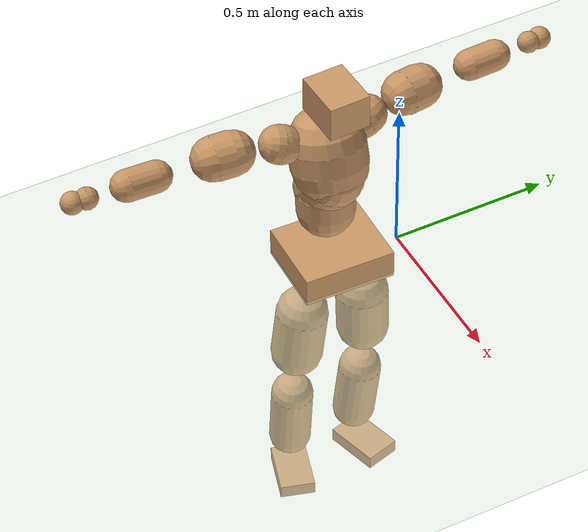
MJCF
<mujoco model="humanoid">
  <compiler coordinate="local" angle="radian"/>
  <default>
    <joint damping="0.0" armature="0.01" stiffness="0.0" limited="true"/>
    <geom conaffinity="1" condim="3" contype="7" margin="0.001" rgba="0.8 0.6 .4 1"/>
  </default>
  <asset>
    <texture type="skybox" builtin="gradient" rgb1=".4 .5 .6" rgb2="0 0 0" width="100" height="100"/>
    <texture builtin="flat" height="1278" mark="cross" markrgb="1 1 1" name="texgeom" random="0.01" rgb1="0.8 0.6 0.4" rgb2="0.8 0.6 0.4" type="cube" width="127"/>
    <texture builtin="checker" height="100" name="texplane" rgb1="0 0 0" rgb2="0.8 0.8 0.8" type="2d" width="100"/>
    <material name="MatPlane" reflectance="0.5" shininess="1" specular="1" texrepeat="60 60" texture="texplane"/>
    <material name="geom" texture="texgeom" texuniform="true"/>
  </asset>
  <worldbody>
    <light cutoff="100" diffuse="1 1 1" dir="-0 0 -1.3" directional="true" exponent="1" pos="0 0 1.3" specular=".1 .1 .1"/>
    <geom conaffinity="1" condim="3" name="floor" pos="0 0 0" rgba="0.8 0.9 0.8 1" size="100 100 .2" type="plane" material="MatPlane"/>
    <body name="Pelvis" pos="0.0029 -0.219 0.0479">
      <freejoint name="Pelvis"/>
      <geom type="box" contype="1" conaffinity="1" density="5359.375306" pos="-0.0057 0.0002 -0.0146" size="0.1238 0.144 0.0467" quat="0.9999 0.0000 0.0000 -0.0158" name="Pelvis"/>
      <body name="L_Hip" pos="0.0015 0.0961 -0.1021">
        <joint name="L_Hip_x" type="hinge" pos="0 0 0" axis="1 0 0" stiffness="1600" damping="160" armature="0.02" range="-180.0000 180.0000"/>
        <joint name="L_Hip_y" type="hinge" pos="0 0 0" axis="0 1 0" stiffness="1600" damping="160" armature="0.02" range="-180.0000 180.0000"/>
        <joint name="L_Hip_z" type="hinge" pos="0 0 0" axis="0 0 1" stiffness="1600" damping="160" armature="0.02" range="-180.0000 180.0000"/>
        <geom type="capsule" contype="1" conaffinity="1" density="2040.816327" size="0.0812" fromto="-0.0069 0.0066 -0.1108 -0.0172 0.0164 -0.2740" name="L_Hip"/>
        <body name="L_Knee" pos="-0.0241 0.023 -0.3848">
          <joint name="L_Knee_x" type="hinge" pos="0 0 0" axis="1 0 0" stiffness="1600" damping="160" armature="0.02" range="-180.0000 180.0000"/>
          <joint name="L_Knee_y" type="hinge" pos="0 0 0" axis="0 1 0" stiffness="1600" damping="160" armature="0.02" range="-180.0000 180.0000"/>
          <joint name="L_Knee_z" type="hinge" pos="0 0 0" axis="0 0 1" stiffness="1600" damping="160" armature="0.02" range="-180.0000 180.0000"/>
          <geom type="capsule" contype="1" conaffinity="1" density="1234.567901" size="0.066" fromto="-0.0137 -0.0022 -0.0950 -0.0446 -0.0071 -0.3092" name="L_Knee"/>
          <body name="L_Ankle" pos="-0.0583 -0.0092 -0.4042">
            <joint name="L_Ankle_x" type="hinge" pos="0 0 0" axis="1 0 0" stiffness="1600" damping="160" armature="0.02" range="-180.0000 180.0000"/>
            <joint name="L_Ankle_y" type="hinge" pos="0 0 0" axis="0 1 0" stiffness="1600" damping="160" armature="0.02" range="-180.0000 180.0000"/>
            <joint name="L_Ankle_z" type="hinge" pos="0 0 0" axis="0 0 1" stiffness="1600" damping="160" armature="0.02" range="-180.0000 180.0000"/>
            <geom type="box" contype="1" conaffinity="1" density="999.999957" pos="0.0587 0.0164 -0.0289" size="0.0863 0.0554 0.0222" quat="0.9908 0.0000 0.0000 0.1356" name="L_Ankle"/>
            <body name="L_Toe" pos="0.1173 0.0327 -0.0578">
              <joint name="L_Toe_x" type="hinge" pos="0 0 0" axis="1 0 0" stiffness="1000" damping="100" armature="0.02" range="-180.0000 180.0000"/>
              <joint name="L_Toe_y" type="hinge" pos="0 0 0" axis="0 1 0" stiffness="1000" damping="100" armature="0.02" range="-180.0000 180.0000"/>
              <joint name="L_Toe_z" type="hinge" pos="0 0 0" axis="0 0 1" stiffness="1000" damping="100" armature="0.02" range="-180.0000 180.0000"/>
              <geom type="box" contype="1" conaffinity="1" density="7850691.444707" pos="0.0000 0.0000 0.0313" size="0.001 0.0026 0.0012" quat="0.9900 0.0000 0.0000 0.1411" name="L_Toe"/>
            </body>
          </body>
        </body>
      </body>
      <body name="R_Hip" pos="0.004 -0.0933 -0.1026">
        <joint name="R_Hip_x" type="hinge" pos="0 0 0" axis="1 0 0" stiffness="1600" damping="160" armature="0.02" range="-180.0000 180.0000"/>
        <joint name="R_Hip_y" type="hinge" pos="0 0 0" axis="0 1 0" stiffness="1600" damping="160" armature="0.02" range="-180.0000 180.0000"/>
        <joint name="R_Hip_z" type="hinge" pos="0 0 0" axis="0 0 1" stiffness="1600" damping="160" armature="0.02" range="-180.0000 180.0000"/>
        <geom type="capsule" contype="1" conaffinity="1" density="2040.816327" size="0.0804" fromto="-0.0074 -0.0088 -0.1098 -0.0187 -0.0223 -0.2789" name="R_Hip"/>
        <body name="R_Knee" pos="-0.026 -0.0311 -0.3887">
          <joint name="R_Knee_x" type="hinge" pos="0 0 0" axis="1 0 0" stiffness="1600" damping="160" armature="0.02" range="-180.0000 180.0000"/>
          <joint name="R_Knee_y" type="hinge" pos="0 0 0" axis="0 1 0" stiffness="1600" damping="160" armature="0.02" range="-180.0000 180.0000"/>
          <joint name="R_Knee_z" type="hinge" pos="0 0 0" axis="0 0 1" stiffness="1600" damping="160" armature="0.02" range="-180.0000 180.0000"/>
          <geom type="capsule" contype="1" conaffinity="1" density="1234.567901" size="0.0655" fromto="-0.0134 0.0027 -0.0945 -0.0445 0.0089 -0.3125" name="R_Knee"/>
          <body name="R_Ankle" pos="-0.0579 0.0116 -0.4071">
            <joint name="R_Ankle_x" type="hinge" pos="0 0 0" axis="1 0 0" stiffness="1600" damping="160" armature="0.02" range="-180.0000 180.0000"/>
            <joint name="R_Ankle_y" type="hinge" pos="0 0 0" axis="0 1 0" stiffness="1600" damping="160" armature="0.02" range="-180.0000 180.0000"/>
            <joint name="R_Ankle_z" type="hinge" pos="0 0 0" axis="0 0 1" stiffness="1600" damping="160" armature="0.02" range="-180.0000 180.0000"/>
            <geom type="box" contype="1" conaffinity="1" density="999.999973" pos="0.0612 -0.0186 -0.0258" size="0.0864 0.0544 0.022" quat="0.9891 0.0000 0.0000 -0.1469" name="R_Ankle"/>
            <body name="R_Toe" pos="0.1223 -0.0372 -0.0515">
              <joint name="R_Toe_x" type="hinge" pos="0 0 0" axis="1 0 0" stiffness="1000" damping="100" armature="0.02" range="-180.0000 180.0000"/>
              <joint name="R_Toe_y" type="hinge" pos="0 0 0" axis="0 1 0" stiffness="1000" damping="100" armature="0.02" range="-180.0000 180.0000"/>
              <joint name="R_Toe_z" type="hinge" pos="0 0 0" axis="0 0 1" stiffness="1000" damping="100" armature="0.02" range="-180.0000 180.0000"/>
              <geom type="box" contype="1" conaffinity="1" density="7504679.467962" pos="0.0000 0.0000 0.0283" size="0.001 0.0026 0.0012" quat="0.9905 0.0000 0.0000 -0.1374" name="R_Toe"/>
            </body>
          </body>
        </body>
      </body>
      <body name="Torso" pos="-0.04 -0.0017 0.1171">
        <joint name="Torso_x" type="hinge" pos="0 0 0" axis="1 0 0" stiffness="2000" damping="200" armature="0.02" range="-180.0000 180.0000"/>
        <joint name="Torso_y" type="hinge" pos="0 0 0" axis="0 1 0" stiffness="2000" damping="200" armature="0.02" range="-180.0000 180.0000"/>
        <joint name="Torso_z" type="hinge" pos="0 0 0" axis="0 0 1" stiffness="2000" damping="200" armature="0.02" range="-180.0000 180.0000"/>
        <geom type="capsule" contype="1" conaffinity="1" density="2040.816327" size="0.09" fromto="-0.0068 0.0011 0.0897 -0.0021 0.0003 0.0271" name="Torso"/>
        <body name="Spine" pos="-0.0089 0.0014 0.1168">
          <joint name="Spine_x" type="hinge" pos="0 0 0" axis="1 0 0" stiffness="2000" damping="200" armature="0.02" range="-180.0000 180.0000"/>
          <joint name="Spine_y" type="hinge" pos="0 0 0" axis="0 1 0" stiffness="2000" damping="200" armature="0.02" range="-180.0000 180.0000"/>
          <joint name="Spine_z" type="hinge" pos="0 0 0" axis="0 0 1" stiffness="2000" damping="200" armature="0.02" range="-180.0000 180.0000"/>
          <geom type="capsule" contype="1" conaffinity="1" density="2040.816327" size="0.0891" fromto="0.0572 0.0011 0.0683 -0.0147 -0.0003 -0.0176" name="Spine"/>
          <body name="Chest" pos="0.0425 0.0008 0.0507">
            <joint name="Chest_x" type="hinge" pos="0 0 0" axis="1 0 0" stiffness="2000" damping="200" armature="0.02" range="-180.0000 180.0000"/>
            <joint name="Chest_y" type="hinge" pos="0 0 0" axis="0 1 0" stiffness="2000" damping="200" armature="0.02" range="-180.0000 180.0000"/>
            <joint name="Chest_z" type="hinge" pos="0 0 0" axis="0 0 1" stiffness="2000" damping="200" armature="0.02" range="-180.0000 180.0000"/>
            <geom type="capsule" contype="1" conaffinity="1" density="2040.816327" size="0.1178" fromto="-0.0361 0.0004 0.1122 -0.0158 0.0002 0.0490" name="Chest"/>
            <body name="Neck" pos="-0.062 0.0024 0.2242">
              <joint name="Neck_x" type="hinge" pos="0 0 0" axis="1 0 0" stiffness="1000" damping="100" armature="0.02" range="-180.0000 180.0000"/>
              <joint name="Neck_y" type="hinge" pos="0 0 0" axis="0 1 0" stiffness="1000" damping="100" armature="0.02" range="-180.0000 180.0000"/>
              <joint name="Neck_z" type="hinge" pos="0 0 0" axis="0 0 1" stiffness="1000" damping="100" armature="0.02" range="-180.0000 180.0000"/>
              <geom type="capsule" contype="1" conaffinity="1" density="1000" size="0.0451" fromto="0.0307 -0.0001 0.0330 0.0216 -0.0001 0.0232" name="Neck"/>
              <body name="Head" pos="0.0523 -0.0002 0.0562">
                <joint name="Head_x" type="hinge" pos="0 0 0" axis="1 0 0" stiffness="1000" damping="100" armature="0.02" range="-180.0000 180.0000"/>
                <joint name="Head_y" type="hinge" pos="0 0 0" axis="0 1 0" stiffness="1000" damping="100" armature="0.02" range="-180.0000 180.0000"/>
                <joint name="Head_z" type="hinge" pos="0 0 0" axis="0 0 1" stiffness="1000" damping="100" armature="0.02" range="-180.0000 180.0000"/>
                <geom type="box" contype="1" conaffinity="1" density="2249.999932" pos="0.0272 0.0009 0.0291" size="0.08 0.0643 0.056" quat="0.9999 0.0000 0.0000 0.0166" name="Head"/>
              </body>
            </body>
            <body name="L_Thorax" pos="-0.0429 0.0885 0.1306">
              <joint name="L_Thorax_x" type="hinge" pos="0 0 0" axis="1 0 0" stiffness="1000" damping="100" armature="0.02" range="-180.0000 180.0000"/>
              <joint name="L_Thorax_y" type="hinge" pos="0 0 0" axis="0 1 0" stiffness="1000" damping="100" armature="0.02" range="-180.0000 180.0000"/>
              <joint name="L_Thorax_z" type="hinge" pos="0 0 0" axis="0 0 1" stiffness="1000" damping="100" armature="0.02" range="-180.0000 180.0000"/>
              <geom type="capsule" contype="1" conaffinity="1" density="1000" size="0.0596" fromto="-0.0096 0.0547 0.0216 -0.0061 0.0351 0.0139" name="L_Thorax"/>
              <body name="L_Shoulder" pos="-0.0157 0.0898 0.0355">
                <joint name="L_Shoulder_x" type="hinge" pos="0 0 0" axis="1 0 0" stiffness="1000" damping="100" armature="0.02" range="-720.0000 720.0000"/>
                <joint name="L_Shoulder_y" type="hinge" pos="0 0 0" axis="0 1 0" stiffness="1000" damping="100" armature="0.02" range="-720.0000 720.0000"/>
                <joint name="L_Shoulder_z" type="hinge" pos="0 0 0" axis="0 0 1" stiffness="1000" damping="100" armature="0.02" range="-720.0000 720.0000"/>
                <geom type="capsule" contype="1" conaffinity="1" density="1000" size="0.0677" fromto="-0.0136 0.0967 -0.0035 -0.0218 0.1547 -0.0056" name="L_Shoulder"/>
                <body name="L_Elbow" pos="-0.0354 0.2514 -0.0091">
                  <joint name="L_Elbow_x" type="hinge" pos="0 0 0" axis="1 0 0" stiffness="1000" damping="100" armature="0.02" range="-720.0000 720.0000"/>
                  <joint name="L_Elbow_y" type="hinge" pos="0 0 0" axis="0 1 0" stiffness="1000" damping="100" armature="0.02" range="-720.0000 720.0000"/>
                  <joint name="L_Elbow_z" type="hinge" pos="0 0 0" axis="0 0 1" stiffness="1000" damping="100" armature="0.02" range="-720.0000 720.0000"/>
                  <geom type="capsule" contype="1" conaffinity="1" density="1000" size="0.0478" fromto="0.0012 0.0777 0.0039 0.0026 0.1622 0.0082" name="L_Elbow"/>
                  <body name="L_Wrist" pos="0.0039 0.2399 0.0121">
                    <joint name="L_Wrist_x" type="hinge" pos="0 0 0" axis="1 0 0" stiffness="600" damping="60" armature="0.02" range="-180.0000 180.0000"/>
                    <joint name="L_Wrist_y" type="hinge" pos="0 0 0" axis="0 1 0" stiffness="600" damping="60" armature="0.02" range="-180.0000 180.0000"/>
                    <joint name="L_Wrist_z" type="hinge" pos="0 0 0" axis="0 0 1" stiffness="600" damping="60" armature="0.02" range="-180.0000 180.0000"/>
                    <geom type="capsule" contype="1" conaffinity="1" density="1000" size="0.0329" fromto="-0.0067 0.0411 -0.0049 -0.0070 0.0430 -0.0051" name="L_Wrist"/>
                    <body name="L_Hand" pos="-0.0137 0.0841 -0.0099">
                      <joint name="L_Hand_x" type="hinge" pos="0 0 0" axis="1 0 0" stiffness="600" damping="60" armature="0.02" range="-180.0000 180.0000"/>
                      <joint name="L_Hand_y" type="hinge" pos="0 0 0" axis="0 1 0" stiffness="600" damping="60" armature="0.02" range="-180.0000 180.0000"/>
                      <joint name="L_Hand_z" type="hinge" pos="0 0 0" axis="0 0 1" stiffness="600" damping="60" armature="0.02" range="-180.0000 180.0000"/>
                      <geom type="sphere" contype="1" conaffinity="1" density="1000" size="0.0342" pos="0.0000 0.0000 0.0000" name="L_Hand"/>
                    </body>
                  </body>
                </body>
              </body>
            </body>
            <body name="R_Thorax" pos="-0.0508 -0.0891 0.1288">
              <joint name="R_Thorax_x" type="hinge" pos="0 0 0" axis="1 0 0" stiffness="1000" damping="100" armature="0.02" range="-180.0000 180.0000"/>
              <joint name="R_Thorax_y" type="hinge" pos="0 0 0" axis="0 1 0" stiffness="1000" damping="100" armature="0.02" range="-180.0000 180.0000"/>
              <joint name="R_Thorax_z" type="hinge" pos="0 0 0" axis="0 0 1" stiffness="1000" damping="100" armature="0.02" range="-180.0000 180.0000"/>
              <geom type="capsule" contype="1" conaffinity="1" density="1000" size="0.0594" fromto="-0.0084 -0.0548 0.0213 -0.0063 -0.0409 0.0159" name="R_Thorax"/>
              <body name="R_Shoulder" pos="-0.0147 -0.0956 0.0371">
                <joint name="R_Shoulder_x" type="hinge" pos="0 0 0" axis="1 0 0" stiffness="1000" damping="100" armature="0.02" range="-720.0000 720.0000"/>
                <joint name="R_Shoulder_y" type="hinge" pos="0 0 0" axis="0 1 0" stiffness="1000" damping="100" armature="0.02" range="-720.0000 720.0000"/>
                <joint name="R_Shoulder_z" type="hinge" pos="0 0 0" axis="0 0 1" stiffness="1000" damping="100" armature="0.02" range="-720.0000 720.0000"/>
                <geom type="capsule" contype="1" conaffinity="1" density="1000" size="0.0687" fromto="-0.0123 -0.0978 -0.0054 -0.0195 -0.1552 -0.0086" name="R_Shoulder"/>
                <body name="R_Elbow" pos="-0.0319 -0.253 -0.0141">
                  <joint name="R_Elbow_x" type="hinge" pos="0 0 0" axis="1 0 0" stiffness="1000" damping="100" armature="0.02" range="-720.0000 720.0000"/>
                  <joint name="R_Elbow_y" type="hinge" pos="0 0 0" axis="0 1 0" stiffness="1000" damping="100" armature="0.02" range="-720.0000 720.0000"/>
                  <joint name="R_Elbow_z" type="hinge" pos="0 0 0" axis="0 0 1" stiffness="1000" damping="100" armature="0.02" range="-720.0000 720.0000"/>
                  <geom type="capsule" contype="1" conaffinity="1" density="1000" size="0.0486" fromto="0.0010 -0.0784 0.0047 0.0022 -0.1722 0.0102" name="R_Elbow"/>
                  <body name="R_Wrist" pos="0.0032 -0.2507 0.0149">
                    <joint name="R_Wrist_x" type="hinge" pos="0 0 0" axis="1 0 0" stiffness="600" damping="60" armature="0.02" range="-180.0000 180.0000"/>
                    <joint name="R_Wrist_y" type="hinge" pos="0 0 0" axis="0 1 0" stiffness="600" damping="60" armature="0.02" range="-180.0000 180.0000"/>
                    <joint name="R_Wrist_z" type="hinge" pos="0 0 0" axis="0 0 1" stiffness="600" damping="60" armature="0.02" range="-180.0000 180.0000"/>
                    <geom type="capsule" contype="1" conaffinity="1" density="1000" size="0.0341" fromto="-0.0057 -0.0419 -0.0038 -0.0059 -0.0439 -0.0039" name="R_Wrist"/>
                    <body name="R_Hand" pos="-0.0116 -0.0858 -0.0077">
                      <joint name="R_Hand_x" type="hinge" pos="0 0 0" axis="1 0 0" stiffness="600" damping="60" armature="0.02" range="-180.0000 180.0000"/>
                      <joint name="R_Hand_y" type="hinge" pos="0 0 0" axis="0 1 0" stiffness="600" damping="60" armature="0.02" range="-180.0000 180.0000"/>
                      <joint name="R_Hand_z" type="hinge" pos="0 0 0" axis="0 0 1" stiffness="600" damping="60" armature="0.02" range="-180.0000 180.0000"/>
                      <geom type="sphere" contype="1" conaffinity="1" density="1000" size="0.0349" pos="0.0000 0.0000 0.0000" name="R_Hand"/>
                    </body>
                  </body>
                </body>
              </body>
            </body>
          </body>
        </body>
      </body>
    </body>
  </worldbody>
  <actuator>
    <motor name="L_Hip_x" joint="L_Hip_x" gear="500"/>
    <motor name="L_Hip_y" joint="L_Hip_y" gear="500"/>
    <motor name="L_Hip_z" joint="L_Hip_z" gear="500"/>
    <motor name="L_Knee_x" joint="L_Knee_x" gear="500"/>
    <motor name="L_Knee_y" joint="L_Knee_y" gear="500"/>
    <motor name="L_Knee_z" joint="L_Knee_z" gear="500"/>
    <motor name="L_Ankle_x" joint="L_Ankle_x" gear="500"/>
    <motor name="L_Ankle_y" joint="L_Ankle_y" gear="500"/>
    <motor name="L_Ankle_z" joint="L_Ankle_z" gear="500"/>
    <motor name="L_Toe_x" joint="L_Toe_x" gear="500"/>
    <motor name="L_Toe_y" joint="L_Toe_y" gear="500"/>
    <motor name="L_Toe_z" joint="L_Toe_z" gear="500"/>
    <motor name="R_Hip_x" joint="R_Hip_x" gear="500"/>
    <motor name="R_Hip_y" joint="R_Hip_y" gear="500"/>
    <motor name="R_Hip_z" joint="R_Hip_z" gear="500"/>
    <motor name="R_Knee_x" joint="R_Knee_x" gear="500"/>
    <motor name="R_Knee_y" joint="R_Knee_y" gear="500"/>
    <motor name="R_Knee_z" joint="R_Knee_z" gear="500"/>
    <motor name="R_Ankle_x" joint="R_Ankle_x" gear="500"/>
    <motor name="R_Ankle_y" joint="R_Ankle_y" gear="500"/>
    <motor name="R_Ankle_z" joint="R_Ankle_z" gear="500"/>
    <motor name="R_Toe_x" joint="R_Toe_x" gear="500"/>
    <motor name="R_Toe_y" joint="R_Toe_y" gear="500"/>
    <motor name="R_Toe_z" joint="R_Toe_z" gear="500"/>
    <motor name="Torso_x" joint="Torso_x" gear="500"/>
    <motor name="Torso_y" joint="Torso_y" gear="500"/>
    <motor name="Torso_z" joint="Torso_z" gear="500"/>
    <motor name="Spine_x" joint="Spine_x" gear="500"/>
    <motor name="Spine_y" joint="Spine_y" gear="500"/>
    <motor name="Spine_z" joint="Spine_z" gear="500"/>
    <motor name="Chest_x" joint="Chest_x" gear="500"/>
    <motor name="Chest_y" joint="Chest_y" gear="500"/>
    <motor name="Chest_z" joint="Chest_z" gear="500"/>
    <motor name="Neck_x" joint="Neck_x" gear="500"/>
    <motor name="Neck_y" joint="Neck_y" gear="500"/>
    <motor name="Neck_z" joint="Neck_z" gear="500"/>
    <motor name="Head_x" joint="Head_x" gear="500"/>
    <motor name="Head_y" joint="Head_y" gear="500"/>
    <motor name="Head_z" joint="Head_z" gear="500"/>
    <motor name="L_Thorax_x" joint="L_Thorax_x" gear="500"/>
    <motor name="L_Thorax_y" joint="L_Thorax_y" gear="500"/>
    <motor name="L_Thorax_z" joint="L_Thorax_z" gear="500"/>
    <motor name="L_Shoulder_x" joint="L_Shoulder_x" gear="500"/>
    <motor name="L_Shoulder_y" joint="L_Shoulder_y" gear="500"/>
    <motor name="L_Shoulder_z" joint="L_Shoulder_z" gear="500"/>
    <motor name="L_Elbow_x" joint="L_Elbow_x" gear="500"/>
    <motor name="L_Elbow_y" joint="L_Elbow_y" gear="500"/>
    <motor name="L_Elbow_z" joint="L_Elbow_z" gear="500"/>
    <motor name="L_Wrist_x" joint="L_Wrist_x" gear="500"/>
    <motor name="L_Wrist_y" joint="L_Wrist_y" gear="500"/>
    <motor name="L_Wrist_z" joint="L_Wrist_z" gear="500"/>
    <motor name="L_Hand_x" joint="L_Hand_x" gear="500"/>
    <motor name="L_Hand_y" joint="L_Hand_y" gear="500"/>
    <motor name="L_Hand_z" joint="L_Hand_z" gear="500"/>
    <motor name="R_Thorax_x" joint="R_Thorax_x" gear="500"/>
    <motor name="R_Thorax_y" joint="R_Thorax_y" gear="500"/>
    <motor name="R_Thorax_z" joint="R_Thorax_z" gear="500"/>
    <motor name="R_Shoulder_x" joint="R_Shoulder_x" gear="500"/>
    <motor name="R_Shoulder_y" joint="R_Shoulder_y" gear="500"/>
    <motor name="R_Shoulder_z" joint="R_Shoulder_z" gear="500"/>
    <motor name="R_Elbow_x" joint="R_Elbow_x" gear="500"/>
    <motor name="R_Elbow_y" joint="R_Elbow_y" gear="500"/>
    <motor name="R_Elbow_z" joint="R_Elbow_z" gear="500"/>
    <motor name="R_Wrist_x" joint="R_Wrist_x" gear="500"/>
    <motor name="R_Wrist_y" joint="R_Wrist_y" gear="500"/>
    <motor name="R_Wrist_z" joint="R_Wrist_z" gear="500"/>
    <motor name="R_Hand_x" joint="R_Hand_x" gear="500"/>
    <motor name="R_Hand_y" joint="R_Hand_y" gear="500"/>
    <motor name="R_Hand_z" joint="R_Hand_z" gear="500"/>
  </actuator>
  <contact>
    <exclude body1="Torso" body2="Chest"/>
    <exclude body1="Head" body2="Chest"/>
    <exclude body1="R_Knee" body2="R_Toe"/>
    <exclude body1="R_Knee" body2="L_Ankle"/>
    <exclude body1="R_Knee" body2="L_Toe"/>
    <exclude body1="L_Knee" body2="L_Toe"/>
    <exclude body1="L_Knee" body2="R_Ankle"/>
    <exclude body1="L_Knee" body2="R_Toe"/>
    <exclude body1="L_Shoulder" body2="Chest"/>
    <exclude body1="R_Shoulder" body2="Chest"/>
  </contact>
  <sensor/>
  <size njmax="700" nconmax="700"/>
</mujoco>
